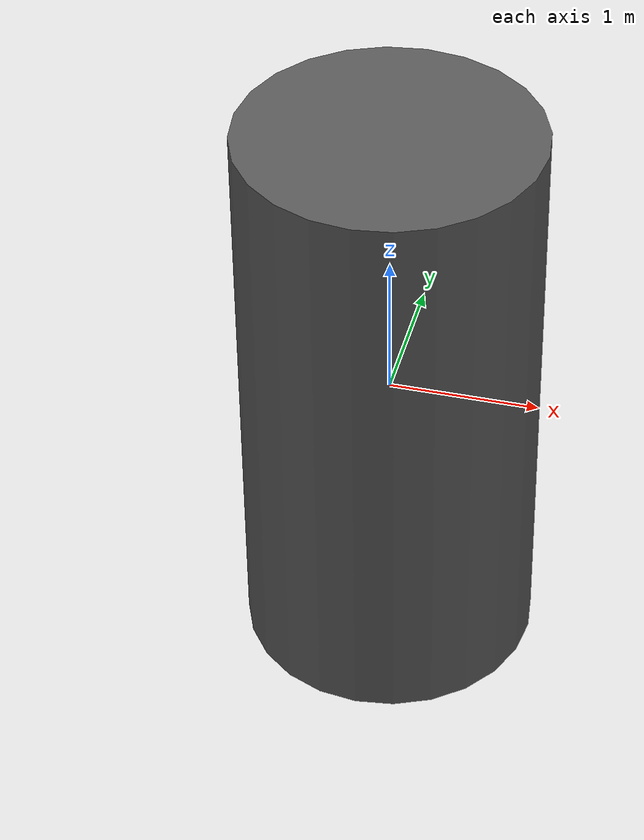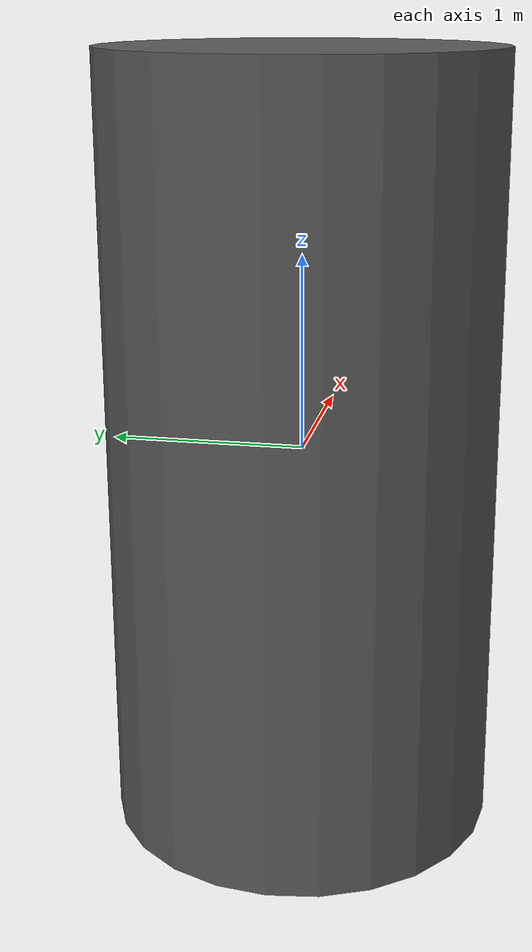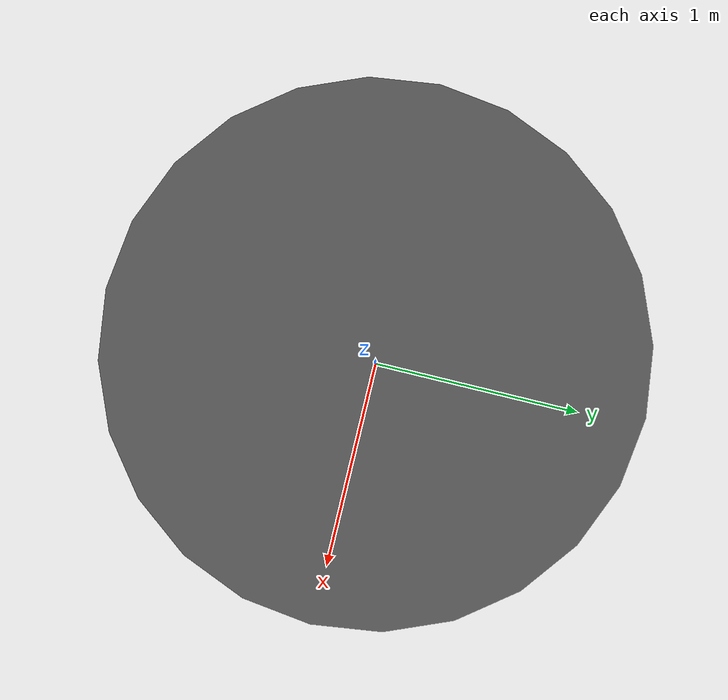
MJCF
<mujoco model="karman_cylinder_3d">
    <compiler angle="degree" coordinate="local"/>
    <option timestep="0.002" gravity="0 0 0"/>

    <default>
        <geom contype="0" conaffinity="0" rgba="0.35 0.35 0.35 1"/>
    </default>

    <worldbody>
        <body name="cylinder" pos="0 0 0">
            <geom name="cylinder_geom" type="cylinder" size="1.0 2.0"/>

        </body>
    </worldbody>
</mujoco>
